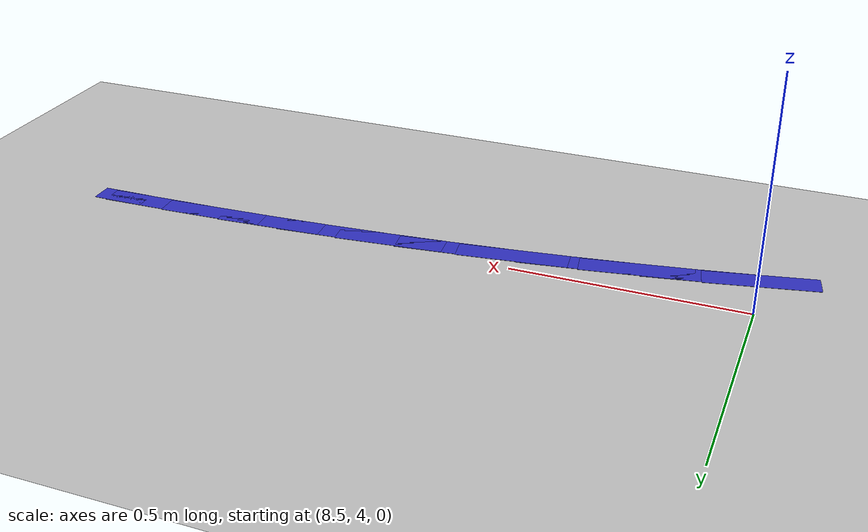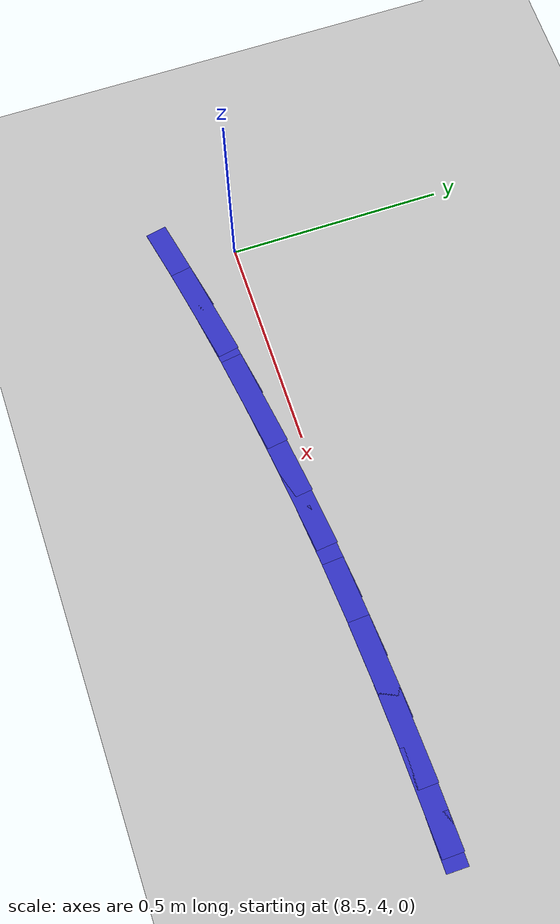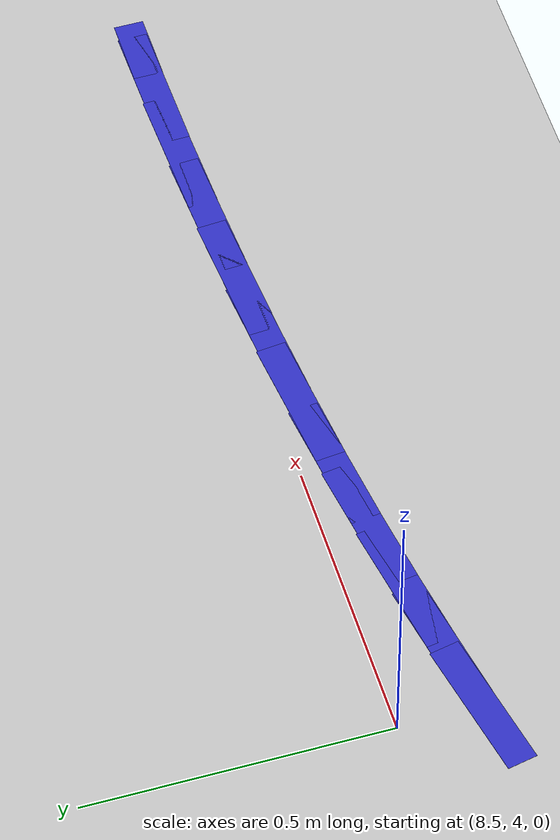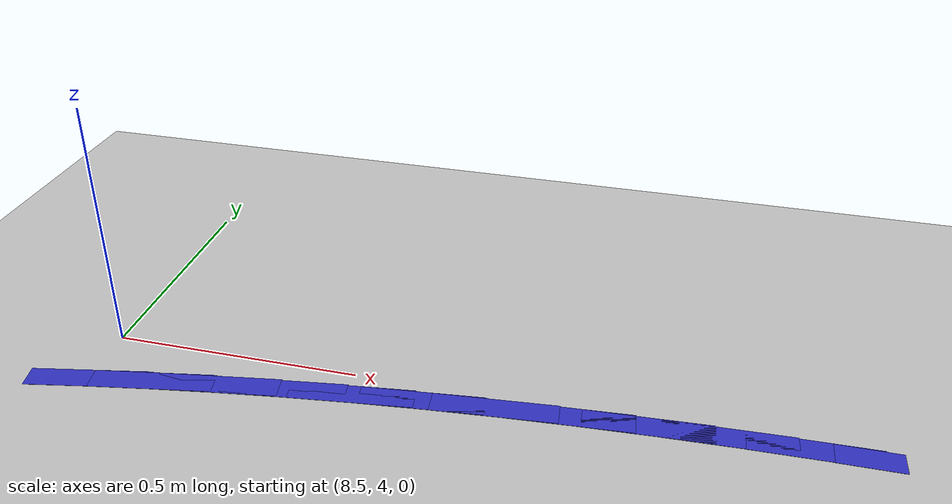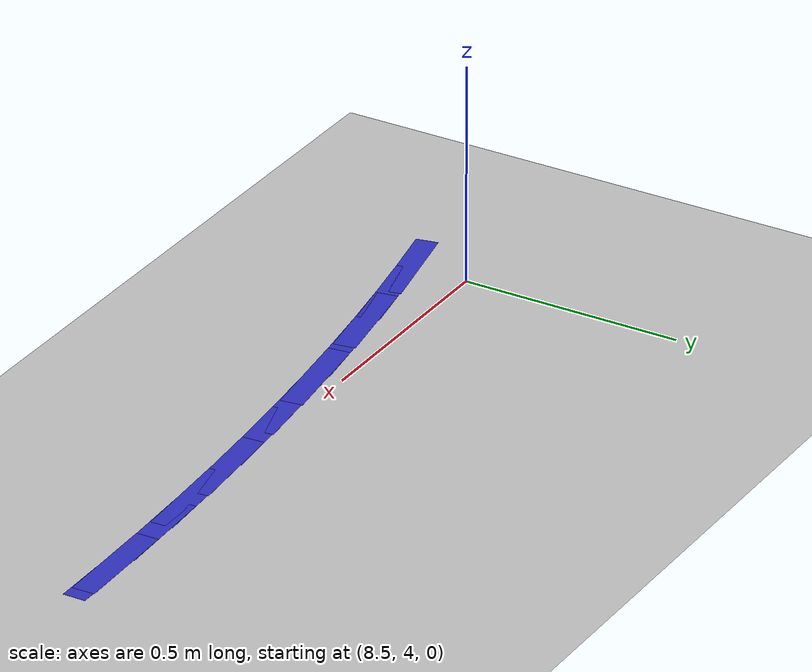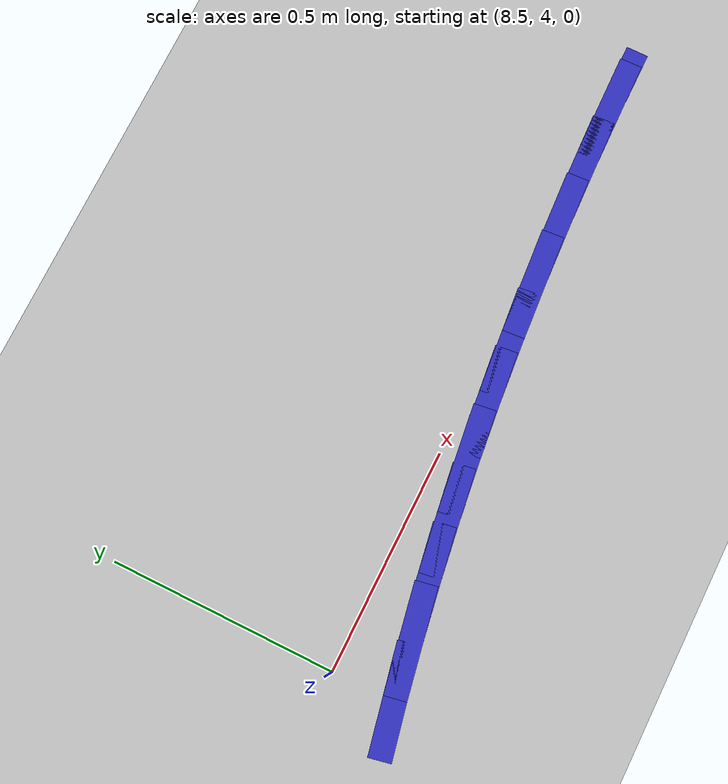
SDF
<sdf version="1.10">
 <world name="empty">
  <model name="ground_plane">
   <static>true</static>
   <link name="link">
    <collision name="collision">
     <geometry><plane><normal>0 0 1</normal><size>100 100</size></plane></geometry>
    </collision>
    <visual name="visual">
     <geometry><plane><normal>0 0 1</normal><size>100 100</size></plane></geometry>
     <material>
      <ambient>0.800000012 0.800000012 0.800000012 1</ambient>
      <diffuse>0.800000012 0.800000012 0.800000012 1</diffuse>
      <specular>0.800000012 0.800000012 0.800000012 1</specular>
     </material>
    </visual>
    <inertial>
     <mass>1</mass>
     <inertia><ixx>1</ixx><ixy>0</ixy><ixz>0</ixz><iyy>1</iyy><iyz>0</iyz><izz>1</izz></inertia>
    </inertial>
   </link>
  </model>
  <model name="unit_box_88">
   <link name="box_link">
    <collision name="box_collision">
     <geometry><box><size>0.000005 0.000005 0.000005</size></box></geometry>
    </collision>
    <visual name="box_visual">
     <geometry><box><size>0.24 0.05 0.0005</size></box></geometry>
     <material>
      <ambient>0.300000012 0.300000012 0.300000012 1</ambient>
      <diffuse>0.2 0.2 0.8 1</diffuse>
      <specular>1 1 1 1</specular>
     </material>
    </visual>
    <pose>8.50480109739369 3.8628257887517146 0 0 0 0.20382324192759457</pose>
   </link>
   <static>false</static>
  </model>
  <model name="unit_box_89">
   <link name="box_link">
    <collision name="box_collision">
     <geometry><box><size>0.000005 0.000005 0.000005</size></box></geometry>
    </collision>
    <visual name="box_visual">
     <geometry><box><size>0.24 0.05 0.0005</size></box></geometry>
     <material>
      <ambient>0.300000012 0.300000012 0.300000012 1</ambient>
      <diffuse>0.2 0.2 0.8 1</diffuse>
      <specular>1 1 1 1</specular>
     </material>
    </visual>
    <pose>8.627587990918263 3.8858083951441773 0 0 0 0.18503373003178408</pose>
   </link>
   <static>false</static>
  </model>
  <model name="unit_box_90">
   <link name="box_link">
    <collision name="box_collision">
     <geometry><box><size>0.000005 0.000005 0.000005</size></box></geometry>
    </collision>
    <visual name="box_visual">
     <geometry><box><size>0.24 0.05 0.0005</size></box></geometry>
     <material>
      <ambient>0.300000012 0.300000012 0.300000012 1</ambient>
      <diffuse>0.2 0.2 0.8 1</diffuse>
      <specular>1 1 1 1</specular>
     </material>
    </visual>
    <pose>8.75281743050338 3.906836964688204 0 0 0 0.16636821504001786</pose>
   </link>
   <static>false</static>
  </model>
  <model name="unit_box_91">
   <link name="box_link">
    <collision name="box_collision">
     <geometry><box><size>0.000005 0.000005 0.000005</size></box></geometry>
    </collision>
    <visual name="box_visual">
     <geometry><box><size>0.24 0.05 0.0005</size></box></geometry>
     <material>
      <ambient>0.300000012 0.300000012 0.300000012 1</ambient>
      <diffuse>0.2 0.2 0.8 1</diffuse>
      <specular>1 1 1 1</specular>
     </material>
    </visual>
    <pose>8.88055125275817 3.9258620280964944 0 0 0 0.14785608298010902</pose>
   </link>
   <static>false</static>
  </model>
  <model name="unit_box_92">
   <link name="box_link">
    <collision name="box_collision">
     <geometry><box><size>0.000005 0.000005 0.000005</size></box></geometry>
    </collision>
    <visual name="box_visual">
     <geometry><box><size>0.24 0.05 0.0005</size></box></geometry>
     <material>
      <ambient>0.300000012 0.300000012 0.300000012 1</ambient>
      <diffuse>0.2 0.2 0.8 1</diffuse>
      <specular>1 1 1 1</specular>
     </material>
    </visual>
    <pose>9.01085129429176 3.9428341160817437 0 0 0 0.1295246718525413</pose>
   </link>
   <static>false</static>
  </model>
  <model name="unit_box_93">
   <link name="box_link">
    <collision name="box_collision">
     <geometry><box><size>0.000005 0.000005 0.000005</size></box></geometry>
    </collision>
    <visual name="box_visual">
     <geometry><box><size>0.24 0.05 0.0005</size></box></geometry>
     <material>
      <ambient>0.300000012 0.300000012 0.300000012 1</ambient>
      <diffuse>0.2 0.2 0.8 1</diffuse>
      <specular>1 1 1 1</specular>
     </material>
    </visual>
    <pose>9.143779391713277 3.9577037593566518 0 0 0 0.11139919209405941</pose>
   </link>
   <static>false</static>
  </model>
  <model name="unit_box_94">
   <link name="box_link">
    <collision name="box_collision">
     <geometry><box><size>0.000005 0.000005 0.000005</size></box></geometry>
    </collision>
    <visual name="box_visual">
     <geometry><box><size>0.24 0.05 0.0005</size></box></geometry>
     <material>
      <ambient>0.300000012 0.300000012 0.300000012 1</ambient>
      <diffuse>0.2 0.2 0.8 1</diffuse>
      <specular>1 1 1 1</specular>
     </material>
    </visual>
    <pose>9.279397381631847 3.9704214886339155 0 0 0 0.09350267630677374</pose>
   </link>
   <static>false</static>
  </model>
  <model name="unit_box_95">
   <link name="box_link">
    <collision name="box_collision">
     <geometry><box><size>0.000005 0.000005 0.000005</size></box></geometry>
    </collision>
    <visual name="box_visual">
     <geometry><box><size>0.24 0.05 0.0005</size></box></geometry>
     <material>
      <ambient>0.300000012 0.300000012 0.300000012 1</ambient>
      <diffuse>0.2 0.2 0.8 1</diffuse>
      <specular>1 1 1 1</specular>
     </material>
    </visual>
    <pose>9.417767100656603 3.980937834626234 0 0 0 0.07585595699928724</pose>
   </link>
   <static>false</static>
  </model>
  <model name="unit_box_96">
   <link name="box_link">
    <collision name="box_collision">
     <geometry><box><size>0.000005 0.000005 0.000005</size></box></geometry>
    </collision>
    <visual name="box_visual">
     <geometry><box><size>0.24 0.05 0.0005</size></box></geometry>
     <material>
      <ambient>0.300000012 0.300000012 0.300000012 1</ambient>
      <diffuse>0.2 0.2 0.8 1</diffuse>
      <specular>1 1 1 1</specular>
     </material>
    </visual>
    <pose>9.558950385396667 3.9892033280463033 0 0 0 0.05847767050944622</pose>
   </link>
   <static>false</static>
  </model>
  <model name="unit_box_97">
   <link name="box_link">
    <collision name="box_collision">
     <geometry><box><size>0.000005 0.000005 0.000005</size></box></geometry>
    </collision>
    <visual name="box_visual">
     <geometry><box><size>0.24 0.05 0.0005</size></box></geometry>
     <material>
      <ambient>0.300000012 0.300000012 0.300000012 1</ambient>
      <diffuse>0.2 0.2 0.8 1</diffuse>
      <specular>1 1 1 1</specular>
     </material>
    </visual>
    <pose>9.703009072461168 3.995168499606822 0 0 0 0.04138428482263476</pose>
   </link>
   <static>false</static>
  </model>
  <model name="unit_box_98">
   <link name="box_link">
    <collision name="box_collision">
     <geometry><box><size>0.000005 0.000005 0.000005</size></box></geometry>
    </collision>
    <visual name="box_visual">
     <geometry><box><size>0.24 0.05 0.0005</size></box></geometry>
     <material>
      <ambient>0.300000012 0.300000012 0.300000012 1</ambient>
      <diffuse>0.2 0.2 0.8 1</diffuse>
      <specular>1 1 1 1</specular>
     </material>
    </visual>
    <pose>9.850004998459239 3.9987838800204885 0 0 0 0.024590148667045553</pose>
   </link>
   <static>false</static>
  </model>
  <model name="unit_box_99">
   <link name="box_link">
    <collision name="box_collision">
     <geometry><box><size>0.000005 0.000005 0.000005</size></box></geometry>
    </collision>
    <visual name="box_visual">
     <geometry><box><size>0.12 0.05 0.0005</size></box></geometry>
     <material>
      <ambient>0.300000012 0.300000012 0.300000012 1</ambient>
      <diffuse>0.2 0.2 0.8 1</diffuse>
      <specular>1 1 1 1</specular>
     </material>
    </visual>
    <pose>9.940001971964614 3.999513551785889 0 0 0 0.00810755905660297</pose>
   </link>
   <static>false</static>
  </model>
 </world>
</sdf>
